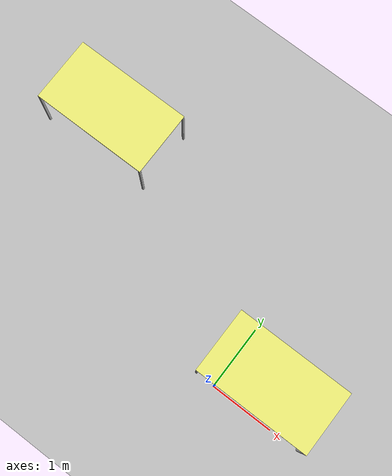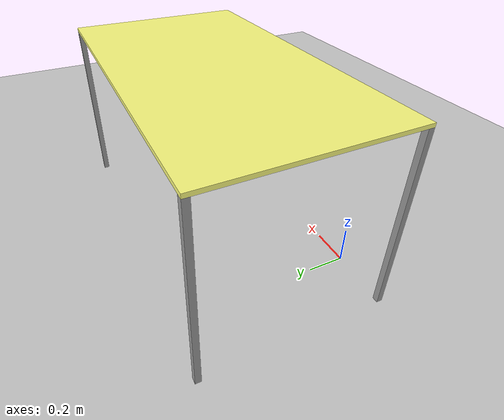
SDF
<sdf version="1.6">
 <world name="default">
  <model name="ground_plane">
   <static>1</static>
   <link name="link">
    <collision name="collision">
     <geometry><plane><normal>0 0 1</normal><size>100 100</size></plane></geometry>
     <surface><friction><ode><mu>100</mu><mu2>50</mu2></ode></friction></surface>
    </collision>
    <visual name="visual">
     <cast_shadows>0</cast_shadows>
     <geometry><plane><normal>0 0 1</normal><size>100 100</size></plane></geometry>
     <material>
      <script><uri>file://media/materials/scripts/gazebo.material</uri><name>Gazebo/Grey</name></script>
     </material>
    </visual>
   </link>
  </model>
  <model name="custom_table_clone_1">
   <link name="link_0">
    <pose>-1e-06 0 0.4 0 -0 0</pose>
    <inertial>
     <mass>1</mass>
     <inertia>
      <ixx>0.166667</ixx>
      <ixy>0</ixy>
      <ixz>0</ixz>
      <iyy>0.166667</iyy>
      <iyz>0</iyz>
      <izz>0.166667</izz>
     </inertia>
    </inertial>
    <visual name="visual">
     <geometry><box><size>1.8 1 0.02</size></box></geometry>
     <material>
      <lighting>1</lighting>
      <script><uri>file://media/materials/scripts/gazebo.material</uri><name>Gazebo/Grey</name></script>
      <shader type="pixel"><normal_map>__default__</normal_map></shader>
      <ambient>0.4 0.4 0.4 0.5</ambient>
      <diffuse>1 1 0.5 1</diffuse>
      <specular>0.4 0.4 0.4 1</specular>
      <emissive>0 0 0 1</emissive>
     </material>
    </visual>
    <collision name="collision">
     <geometry><box><size>1.8 1 0.02</size></box></geometry>
     <surface>
      <friction>
       <ode><mu>1</mu><mu2>1</mu2><fdir1>0 0 0</fdir1><slip1>0</slip1><slip2>0</slip2></ode>
       <torsional>
        <coefficient>1</coefficient>
        <patch_radius>0</patch_radius>
        <surface_radius>0</surface_radius>
        <use_patch_radius>1</use_patch_radius>
        <ode><slip>0</slip></ode>
       </torsional>
      </friction>
      <bounce><restitution_coefficient>0</restitution_coefficient><threshold>1e+06</threshold></bounce>
      <contact>
       <collide_without_contact>0</collide_without_contact>
       <collide_without_contact_bitmask>1</collide_without_contact_bitmask>
       <collide_bitmask>1</collide_bitmask>
       <ode>
        <soft_cfm>0</soft_cfm>
        <soft_erp>0.2</soft_erp>
        <kp>1e+13</kp>
        <kd>1</kd>
        <max_vel>0.01</max_vel>
        <min_depth>0</min_depth>
       </ode>
       <bullet>
        <split_impulse>1</split_impulse>
        <split_impulse_penetration_threshold>-0.01</split_impulse_penetration_threshold>
        <soft_cfm>0</soft_cfm>
        <soft_erp>0.2</soft_erp>
        <kp>1e+13</kp>
        <kd>1</kd>
       </bullet>
      </contact>
     </surface>
    </collision>
   </link>
   <link name="link_1_clone">
    <pose>0.884999 -0.485 -0.1 0 -0 0</pose>
    <inertial>
     <mass>1</mass>
     <inertia>
      <ixx>0.166667</ixx>
      <ixy>0</ixy>
      <ixz>0</ixz>
      <iyy>0.166667</iyy>
      <iyz>0</iyz>
      <izz>0.166667</izz>
     </inertia>
    </inertial>
    <visual name="visual">
     <geometry><box><size>0.03 0.03 0.98</size></box></geometry>
     <material>
      <lighting>1</lighting>
      <script><uri>file://media/materials/scripts/gazebo.material</uri><name>Gazebo/Grey</name></script>
      <shader type="pixel"><normal_map>__default__</normal_map></shader>
      <ambient>0.3 0.3 0.3 1</ambient>
      <diffuse>0.7 0.7 0.7 1</diffuse>
      <specular>0.01 0.01 0.01 1</specular>
      <emissive>0 0 0 1</emissive>
     </material>
    </visual>
    <collision name="collision">
     <geometry><box><size>0.03 0.03 0.98</size></box></geometry>
     <surface>
      <friction>
       <ode><mu>1</mu><mu2>1</mu2><fdir1>0 0 0</fdir1><slip1>0</slip1><slip2>0</slip2></ode>
       <torsional>
        <coefficient>1</coefficient>
        <patch_radius>0</patch_radius>
        <surface_radius>0</surface_radius>
        <use_patch_radius>1</use_patch_radius>
        <ode><slip>0</slip></ode>
       </torsional>
      </friction>
      <bounce><restitution_coefficient>0</restitution_coefficient><threshold>1e+06</threshold></bounce>
      <contact>
       <collide_without_contact>0</collide_without_contact>
       <collide_without_contact_bitmask>1</collide_without_contact_bitmask>
       <collide_bitmask>1</collide_bitmask>
       <ode>
        <soft_cfm>0</soft_cfm>
        <soft_erp>0.2</soft_erp>
        <kp>1e+13</kp>
        <kd>1</kd>
        <max_vel>0.01</max_vel>
        <min_depth>0</min_depth>
       </ode>
       <bullet>
        <split_impulse>1</split_impulse>
        <split_impulse_penetration_threshold>-0.01</split_impulse_penetration_threshold>
        <soft_cfm>0</soft_cfm>
        <soft_erp>0.2</soft_erp>
        <kp>1e+13</kp>
        <kd>1</kd>
       </bullet>
      </contact>
     </surface>
    </collision>
   </link>
   <link name="link_1_clone_0">
    <pose>-0.885001 0.485 -0.1 0 -0 0</pose>
    <inertial>
     <mass>1</mass>
     <inertia>
      <ixx>0.166667</ixx>
      <ixy>0</ixy>
      <ixz>0</ixz>
      <iyy>0.166667</iyy>
      <iyz>0</iyz>
      <izz>0.166667</izz>
     </inertia>
    </inertial>
    <visual name="visual">
     <geometry><box><size>0.03 0.03 0.98</size></box></geometry>
     <material>
      <lighting>1</lighting>
      <script><uri>file://media/materials/scripts/gazebo.material</uri><name>Gazebo/Grey</name></script>
      <shader type="pixel"><normal_map>__default__</normal_map></shader>
      <ambient>0.3 0.3 0.3 1</ambient>
      <diffuse>0.7 0.7 0.7 1</diffuse>
      <specular>0.01 0.01 0.01 1</specular>
      <emissive>0 0 0 1</emissive>
     </material>
    </visual>
    <collision name="collision">
     <geometry><box><size>0.03 0.03 0.98</size></box></geometry>
     <surface>
      <friction>
       <ode><mu>1</mu><mu2>1</mu2><fdir1>0 0 0</fdir1><slip1>0</slip1><slip2>0</slip2></ode>
       <torsional>
        <coefficient>1</coefficient>
        <patch_radius>0</patch_radius>
        <surface_radius>0</surface_radius>
        <use_patch_radius>1</use_patch_radius>
        <ode><slip>0</slip></ode>
       </torsional>
      </friction>
      <bounce><restitution_coefficient>0</restitution_coefficient><threshold>1e+06</threshold></bounce>
      <contact>
       <collide_without_contact>0</collide_without_contact>
       <collide_without_contact_bitmask>1</collide_without_contact_bitmask>
       <collide_bitmask>1</collide_bitmask>
       <ode>
        <soft_cfm>0</soft_cfm>
        <soft_erp>0.2</soft_erp>
        <kp>1e+13</kp>
        <kd>1</kd>
        <max_vel>0.01</max_vel>
        <min_depth>0</min_depth>
       </ode>
       <bullet>
        <split_impulse>1</split_impulse>
        <split_impulse_penetration_threshold>-0.01</split_impulse_penetration_threshold>
        <soft_cfm>0</soft_cfm>
        <soft_erp>0.2</soft_erp>
        <kp>1e+13</kp>
        <kd>1</kd>
       </bullet>
      </contact>
     </surface>
    </collision>
   </link>
   <link name="link_1_clone_clone">
    <pose>0.884999 0.485 -0.1 0 -0 0</pose>
    <inertial>
     <mass>1</mass>
     <inertia>
      <ixx>0.166667</ixx>
      <ixy>0</ixy>
      <ixz>0</ixz>
      <iyy>0.166667</iyy>
      <iyz>0</iyz>
      <izz>0.166667</izz>
     </inertia>
    </inertial>
    <visual name="visual">
     <geometry><box><size>0.03 0.03 0.98</size></box></geometry>
     <material>
      <lighting>1</lighting>
      <script><uri>file://media/materials/scripts/gazebo.material</uri><name>Gazebo/Grey</name></script>
      <shader type="pixel"><normal_map>__default__</normal_map></shader>
      <ambient>0.3 0.3 0.3 1</ambient>
      <diffuse>0.7 0.7 0.7 1</diffuse>
      <specular>0.01 0.01 0.01 1</specular>
      <emissive>0 0 0 1</emissive>
     </material>
    </visual>
    <collision name="collision">
     <geometry><box><size>0.03 0.03 0.98</size></box></geometry>
     <surface>
      <friction>
       <ode><mu>1</mu><mu2>1</mu2><fdir1>0 0 0</fdir1><slip1>0</slip1><slip2>0</slip2></ode>
       <torsional>
        <coefficient>1</coefficient>
        <patch_radius>0</patch_radius>
        <surface_radius>0</surface_radius>
        <use_patch_radius>1</use_patch_radius>
        <ode><slip>0</slip></ode>
       </torsional>
      </friction>
      <bounce><restitution_coefficient>0</restitution_coefficient><threshold>1e+06</threshold></bounce>
      <contact>
       <collide_without_contact>0</collide_without_contact>
       <collide_without_contact_bitmask>1</collide_without_contact_bitmask>
       <collide_bitmask>1</collide_bitmask>
       <ode>
        <soft_cfm>0</soft_cfm>
        <soft_erp>0.2</soft_erp>
        <kp>1e+13</kp>
        <kd>1</kd>
        <max_vel>0.01</max_vel>
        <min_depth>0</min_depth>
       </ode>
       <bullet>
        <split_impulse>1</split_impulse>
        <split_impulse_penetration_threshold>-0.01</split_impulse_penetration_threshold>
        <soft_cfm>0</soft_cfm>
        <soft_erp>0.2</soft_erp>
        <kp>1e+13</kp>
        <kd>1</kd>
       </bullet>
      </contact>
     </surface>
    </collision>
   </link>
   <link name="link_1_clone_clone_0">
    <pose>-0.885001 -0.485 -0.1 0 -0 0</pose>
    <inertial>
     <mass>1</mass>
     <inertia>
      <ixx>0.166667</ixx>
      <ixy>0</ixy>
      <ixz>0</ixz>
      <iyy>0.166667</iyy>
      <iyz>0</iyz>
      <izz>0.166667</izz>
     </inertia>
    </inertial>
    <visual name="visual">
     <geometry><box><size>0.03 0.03 0.98</size></box></geometry>
     <material>
      <lighting>1</lighting>
      <script><uri>file://media/materials/scripts/gazebo.material</uri><name>Gazebo/Grey</name></script>
      <shader type="pixel"><normal_map>__default__</normal_map></shader>
      <ambient>0.3 0.3 0.3 1</ambient>
      <diffuse>0.7 0.7 0.7 1</diffuse>
      <specular>0.01 0.01 0.01 1</specular>
      <emissive>0 0 0 1</emissive>
     </material>
    </visual>
    <collision name="collision">
     <geometry><box><size>0.03 0.03 0.98</size></box></geometry>
     <surface>
      <friction>
       <ode><mu>1</mu><mu2>1</mu2><fdir1>0 0 0</fdir1><slip1>0</slip1><slip2>0</slip2></ode>
       <torsional>
        <coefficient>1</coefficient>
        <patch_radius>0</patch_radius>
        <surface_radius>0</surface_radius>
        <use_patch_radius>1</use_patch_radius>
        <ode><slip>0</slip></ode>
       </torsional>
      </friction>
      <bounce><restitution_coefficient>0</restitution_coefficient><threshold>1e+06</threshold></bounce>
      <contact>
       <collide_without_contact>0</collide_without_contact>
       <collide_without_contact_bitmask>1</collide_without_contact_bitmask>
       <collide_bitmask>1</collide_bitmask>
       <ode>
        <soft_cfm>0</soft_cfm>
        <soft_erp>0.2</soft_erp>
        <kp>1e+13</kp>
        <kd>1</kd>
        <max_vel>0.01</max_vel>
        <min_depth>0</min_depth>
       </ode>
       <bullet>
        <split_impulse>1</split_impulse>
        <split_impulse_penetration_threshold>-0.01</split_impulse_penetration_threshold>
        <soft_cfm>0</soft_cfm>
        <soft_erp>0.2</soft_erp>
        <kp>1e+13</kp>
        <kd>1</kd>
       </bullet>
      </contact>
     </surface>
    </collision>
   </link>
   <joint name="link_0_JOINT_0" type="fixed">
    <parent>link_0</parent>
    <child>link_1_clone</child>
    <physics>
     <ode><limit><cfm>0</cfm><erp>0.2</erp></limit><suspension><cfm>0</cfm><erp>0.2</erp></suspension></ode>
    </physics>
   </joint>
   <joint name="link_0_JOINT_1" type="fixed">
    <parent>link_0</parent>
    <child>link_1_clone_0</child>
    <physics>
     <ode><limit><cfm>0</cfm><erp>0.2</erp></limit><suspension><cfm>0</cfm><erp>0.2</erp></suspension></ode>
    </physics>
   </joint>
   <joint name="link_0_JOINT_2" type="fixed">
    <parent>link_0</parent>
    <child>link_1_clone_clone</child>
    <physics>
     <ode><limit><cfm>0</cfm><erp>0.2</erp></limit><suspension><cfm>0</cfm><erp>0.2</erp></suspension></ode>
    </physics>
   </joint>
   <joint name="link_0_JOINT_3" type="fixed">
    <parent>link_0</parent>
    <child>link_1_clone_clone_0</child>
    <physics>
     <ode><limit><cfm>0</cfm><erp>0.2</erp></limit><suspension><cfm>0</cfm><erp>0.2</erp></suspension></ode>
    </physics>
   </joint>
   <static>1</static>
   <pose>-3.45789 2.15493 0.6 0 -0 0</pose>
  </model>
  <model name="custom_table_clone_2">
   <link name="link_0">
    <pose>-1e-06 0 0.4 0 -0 0</pose>
    <inertial>
     <mass>1</mass>
     <inertia>
      <ixx>0.166667</ixx>
      <ixy>0</ixy>
      <ixz>0</ixz>
      <iyy>0.166667</iyy>
      <iyz>0</iyz>
      <izz>0.166667</izz>
     </inertia>
    </inertial>
    <visual name="visual">
     <geometry><box><size>1.8 1 0.02</size></box></geometry>
     <material>
      <lighting>1</lighting>
      <script><uri>file://media/materials/scripts/gazebo.material</uri><name>Gazebo/Grey</name></script>
      <shader type="pixel"><normal_map>__default__</normal_map></shader>
      <ambient>0.4 0.4 0.4 0.5</ambient>
      <diffuse>1 1 0.5 1</diffuse>
      <specular>0.4 0.4 0.4 1</specular>
      <emissive>0 0 0 1</emissive>
     </material>
    </visual>
    <collision name="collision">
     <geometry><box><size>1.8 1 0.02</size></box></geometry>
     <surface>
      <friction>
       <ode><mu>1</mu><mu2>1</mu2><fdir1>0 0 0</fdir1><slip1>0</slip1><slip2>0</slip2></ode>
       <torsional>
        <coefficient>1</coefficient>
        <patch_radius>0</patch_radius>
        <surface_radius>0</surface_radius>
        <use_patch_radius>1</use_patch_radius>
        <ode><slip>0</slip></ode>
       </torsional>
      </friction>
      <bounce><restitution_coefficient>0</restitution_coefficient><threshold>1e+06</threshold></bounce>
      <contact>
       <collide_without_contact>0</collide_without_contact>
       <collide_without_contact_bitmask>1</collide_without_contact_bitmask>
       <collide_bitmask>1</collide_bitmask>
       <ode>
        <soft_cfm>0</soft_cfm>
        <soft_erp>0.2</soft_erp>
        <kp>1e+13</kp>
        <kd>1</kd>
        <max_vel>0.01</max_vel>
        <min_depth>0</min_depth>
       </ode>
       <bullet>
        <split_impulse>1</split_impulse>
        <split_impulse_penetration_threshold>-0.01</split_impulse_penetration_threshold>
        <soft_cfm>0</soft_cfm>
        <soft_erp>0.2</soft_erp>
        <kp>1e+13</kp>
        <kd>1</kd>
       </bullet>
      </contact>
     </surface>
    </collision>
   </link>
   <link name="link_1_clone">
    <pose>0.884999 -0.485 -0.1 0 -0 0</pose>
    <inertial>
     <mass>1</mass>
     <inertia>
      <ixx>0.166667</ixx>
      <ixy>0</ixy>
      <ixz>0</ixz>
      <iyy>0.166667</iyy>
      <iyz>0</iyz>
      <izz>0.166667</izz>
     </inertia>
    </inertial>
    <visual name="visual">
     <geometry><box><size>0.03 0.03 0.98</size></box></geometry>
     <material>
      <lighting>1</lighting>
      <script><uri>file://media/materials/scripts/gazebo.material</uri><name>Gazebo/Grey</name></script>
      <shader type="pixel"><normal_map>__default__</normal_map></shader>
      <ambient>0.3 0.3 0.3 1</ambient>
      <diffuse>0.7 0.7 0.7 1</diffuse>
      <specular>0.01 0.01 0.01 1</specular>
      <emissive>0 0 0 1</emissive>
     </material>
    </visual>
    <collision name="collision">
     <geometry><box><size>0.03 0.03 0.98</size></box></geometry>
     <surface>
      <friction>
       <ode><mu>1</mu><mu2>1</mu2><fdir1>0 0 0</fdir1><slip1>0</slip1><slip2>0</slip2></ode>
       <torsional>
        <coefficient>1</coefficient>
        <patch_radius>0</patch_radius>
        <surface_radius>0</surface_radius>
        <use_patch_radius>1</use_patch_radius>
        <ode><slip>0</slip></ode>
       </torsional>
      </friction>
      <bounce><restitution_coefficient>0</restitution_coefficient><threshold>1e+06</threshold></bounce>
      <contact>
       <collide_without_contact>0</collide_without_contact>
       <collide_without_contact_bitmask>1</collide_without_contact_bitmask>
       <collide_bitmask>1</collide_bitmask>
       <ode>
        <soft_cfm>0</soft_cfm>
        <soft_erp>0.2</soft_erp>
        <kp>1e+13</kp>
        <kd>1</kd>
        <max_vel>0.01</max_vel>
        <min_depth>0</min_depth>
       </ode>
       <bullet>
        <split_impulse>1</split_impulse>
        <split_impulse_penetration_threshold>-0.01</split_impulse_penetration_threshold>
        <soft_cfm>0</soft_cfm>
        <soft_erp>0.2</soft_erp>
        <kp>1e+13</kp>
        <kd>1</kd>
       </bullet>
      </contact>
     </surface>
    </collision>
   </link>
   <link name="link_1_clone_0">
    <pose>-0.885001 0.485 -0.1 0 -0 0</pose>
    <inertial>
     <mass>1</mass>
     <inertia>
      <ixx>0.166667</ixx>
      <ixy>0</ixy>
      <ixz>0</ixz>
      <iyy>0.166667</iyy>
      <iyz>0</iyz>
      <izz>0.166667</izz>
     </inertia>
    </inertial>
    <visual name="visual">
     <geometry><box><size>0.03 0.03 0.98</size></box></geometry>
     <material>
      <lighting>1</lighting>
      <script><uri>file://media/materials/scripts/gazebo.material</uri><name>Gazebo/Grey</name></script>
      <shader type="pixel"><normal_map>__default__</normal_map></shader>
      <ambient>0.3 0.3 0.3 1</ambient>
      <diffuse>0.7 0.7 0.7 1</diffuse>
      <specular>0.01 0.01 0.01 1</specular>
      <emissive>0 0 0 1</emissive>
     </material>
    </visual>
    <collision name="collision">
     <geometry><box><size>0.03 0.03 0.98</size></box></geometry>
     <surface>
      <friction>
       <ode><mu>1</mu><mu2>1</mu2><fdir1>0 0 0</fdir1><slip1>0</slip1><slip2>0</slip2></ode>
       <torsional>
        <coefficient>1</coefficient>
        <patch_radius>0</patch_radius>
        <surface_radius>0</surface_radius>
        <use_patch_radius>1</use_patch_radius>
        <ode><slip>0</slip></ode>
       </torsional>
      </friction>
      <bounce><restitution_coefficient>0</restitution_coefficient><threshold>1e+06</threshold></bounce>
      <contact>
       <collide_without_contact>0</collide_without_contact>
       <collide_without_contact_bitmask>1</collide_without_contact_bitmask>
       <collide_bitmask>1</collide_bitmask>
       <ode>
        <soft_cfm>0</soft_cfm>
        <soft_erp>0.2</soft_erp>
        <kp>1e+13</kp>
        <kd>1</kd>
        <max_vel>0.01</max_vel>
        <min_depth>0</min_depth>
       </ode>
       <bullet>
        <split_impulse>1</split_impulse>
        <split_impulse_penetration_threshold>-0.01</split_impulse_penetration_threshold>
        <soft_cfm>0</soft_cfm>
        <soft_erp>0.2</soft_erp>
        <kp>1e+13</kp>
        <kd>1</kd>
       </bullet>
      </contact>
     </surface>
    </collision>
   </link>
   <link name="link_1_clone_clone">
    <pose>0.884999 0.485 -0.1 0 -0 0</pose>
    <inertial>
     <mass>1</mass>
     <inertia>
      <ixx>0.166667</ixx>
      <ixy>0</ixy>
      <ixz>0</ixz>
      <iyy>0.166667</iyy>
      <iyz>0</iyz>
      <izz>0.166667</izz>
     </inertia>
    </inertial>
    <visual name="visual">
     <geometry><box><size>0.03 0.03 0.98</size></box></geometry>
     <material>
      <lighting>1</lighting>
      <script><uri>file://media/materials/scripts/gazebo.material</uri><name>Gazebo/Grey</name></script>
      <shader type="pixel"><normal_map>__default__</normal_map></shader>
      <ambient>0.3 0.3 0.3 1</ambient>
      <diffuse>0.7 0.7 0.7 1</diffuse>
      <specular>0.01 0.01 0.01 1</specular>
      <emissive>0 0 0 1</emissive>
     </material>
    </visual>
    <collision name="collision">
     <geometry><box><size>0.03 0.03 0.98</size></box></geometry>
     <surface>
      <friction>
       <ode><mu>1</mu><mu2>1</mu2><fdir1>0 0 0</fdir1><slip1>0</slip1><slip2>0</slip2></ode>
       <torsional>
        <coefficient>1</coefficient>
        <patch_radius>0</patch_radius>
        <surface_radius>0</surface_radius>
        <use_patch_radius>1</use_patch_radius>
        <ode><slip>0</slip></ode>
       </torsional>
      </friction>
      <bounce><restitution_coefficient>0</restitution_coefficient><threshold>1e+06</threshold></bounce>
      <contact>
       <collide_without_contact>0</collide_without_contact>
       <collide_without_contact_bitmask>1</collide_without_contact_bitmask>
       <collide_bitmask>1</collide_bitmask>
       <ode>
        <soft_cfm>0</soft_cfm>
        <soft_erp>0.2</soft_erp>
        <kp>1e+13</kp>
        <kd>1</kd>
        <max_vel>0.01</max_vel>
        <min_depth>0</min_depth>
       </ode>
       <bullet>
        <split_impulse>1</split_impulse>
        <split_impulse_penetration_threshold>-0.01</split_impulse_penetration_threshold>
        <soft_cfm>0</soft_cfm>
        <soft_erp>0.2</soft_erp>
        <kp>1e+13</kp>
        <kd>1</kd>
       </bullet>
      </contact>
     </surface>
    </collision>
   </link>
   <link name="link_1_clone_clone_0">
    <pose>-0.885001 -0.485 -0.1 0 -0 0</pose>
    <inertial>
     <mass>1</mass>
     <inertia>
      <ixx>0.166667</ixx>
      <ixy>0</ixy>
      <ixz>0</ixz>
      <iyy>0.166667</iyy>
      <iyz>0</iyz>
      <izz>0.166667</izz>
     </inertia>
    </inertial>
    <visual name="visual">
     <geometry><box><size>0.03 0.03 0.98</size></box></geometry>
     <material>
      <lighting>1</lighting>
      <script><uri>file://media/materials/scripts/gazebo.material</uri><name>Gazebo/Grey</name></script>
      <shader type="pixel"><normal_map>__default__</normal_map></shader>
      <ambient>0.3 0.3 0.3 1</ambient>
      <diffuse>0.7 0.7 0.7 1</diffuse>
      <specular>0.01 0.01 0.01 1</specular>
      <emissive>0 0 0 1</emissive>
     </material>
    </visual>
    <collision name="collision">
     <geometry><box><size>0.03 0.03 0.98</size></box></geometry>
     <surface>
      <friction>
       <ode><mu>1</mu><mu2>1</mu2><fdir1>0 0 0</fdir1><slip1>0</slip1><slip2>0</slip2></ode>
       <torsional>
        <coefficient>1</coefficient>
        <patch_radius>0</patch_radius>
        <surface_radius>0</surface_radius>
        <use_patch_radius>1</use_patch_radius>
        <ode><slip>0</slip></ode>
       </torsional>
      </friction>
      <bounce><restitution_coefficient>0</restitution_coefficient><threshold>1e+06</threshold></bounce>
      <contact>
       <collide_without_contact>0</collide_without_contact>
       <collide_without_contact_bitmask>1</collide_without_contact_bitmask>
       <collide_bitmask>1</collide_bitmask>
       <ode>
        <soft_cfm>0</soft_cfm>
        <soft_erp>0.2</soft_erp>
        <kp>1e+13</kp>
        <kd>1</kd>
        <max_vel>0.01</max_vel>
        <min_depth>0</min_depth>
       </ode>
       <bullet>
        <split_impulse>1</split_impulse>
        <split_impulse_penetration_threshold>-0.01</split_impulse_penetration_threshold>
        <soft_cfm>0</soft_cfm>
        <soft_erp>0.2</soft_erp>
        <kp>1e+13</kp>
        <kd>1</kd>
       </bullet>
      </contact>
     </surface>
    </collision>
   </link>
   <joint name="link_0_JOINT_0" type="fixed">
    <parent>link_0</parent>
    <child>link_1_clone</child>
    <physics>
     <ode><limit><cfm>0</cfm><erp>0.2</erp></limit><suspension><cfm>0</cfm><erp>0.2</erp></suspension></ode>
    </physics>
   </joint>
   <joint name="link_0_JOINT_1" type="fixed">
    <parent>link_0</parent>
    <child>link_1_clone_0</child>
    <physics>
     <ode><limit><cfm>0</cfm><erp>0.2</erp></limit><suspension><cfm>0</cfm><erp>0.2</erp></suspension></ode>
    </physics>
   </joint>
   <joint name="link_0_JOINT_2" type="fixed">
    <parent>link_0</parent>
    <child>link_1_clone_clone</child>
    <physics>
     <ode><limit><cfm>0</cfm><erp>0.2</erp></limit><suspension><cfm>0</cfm><erp>0.2</erp></suspension></ode>
    </physics>
   </joint>
   <joint name="link_0_JOINT_3" type="fixed">
    <parent>link_0</parent>
    <child>link_1_clone_clone_0</child>
    <physics>
     <ode><limit><cfm>0</cfm><erp>0.2</erp></limit><suspension><cfm>0</cfm><erp>0.2</erp></suspension></ode>
    </physics>
   </joint>
   <static>1</static>
   <pose>0.577327 0.497882 0.6 0 -0 0</pose>
  </model>
 </world>
</sdf>
